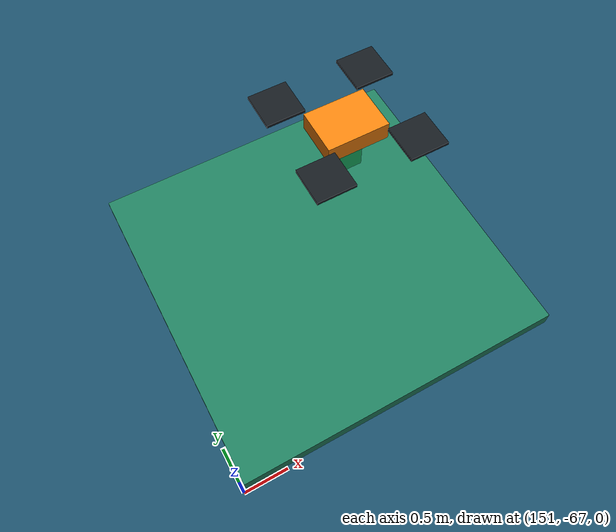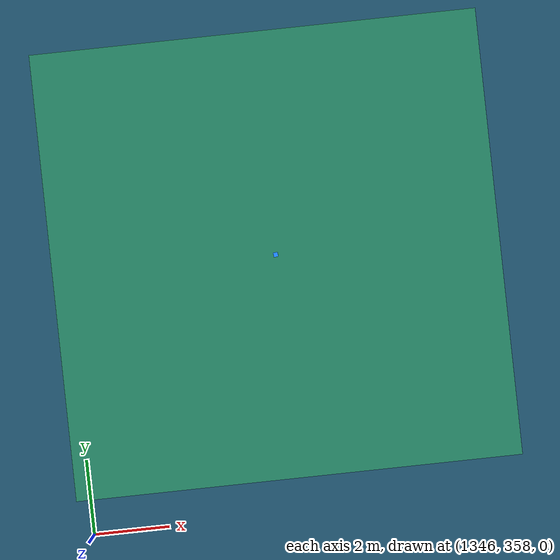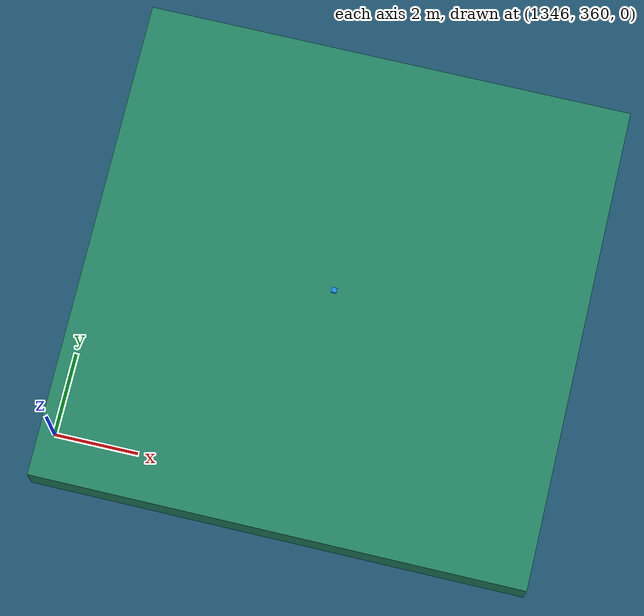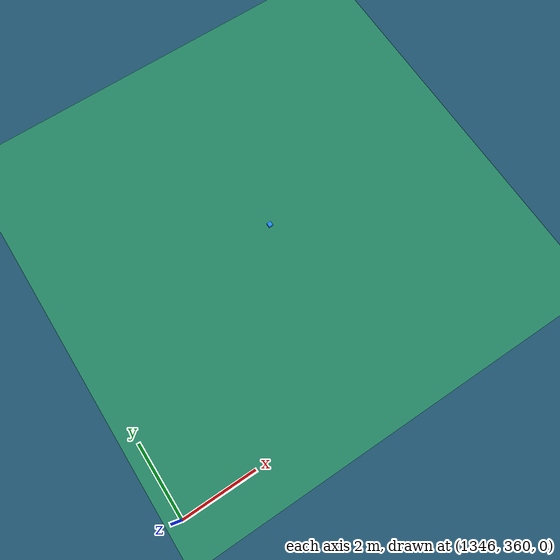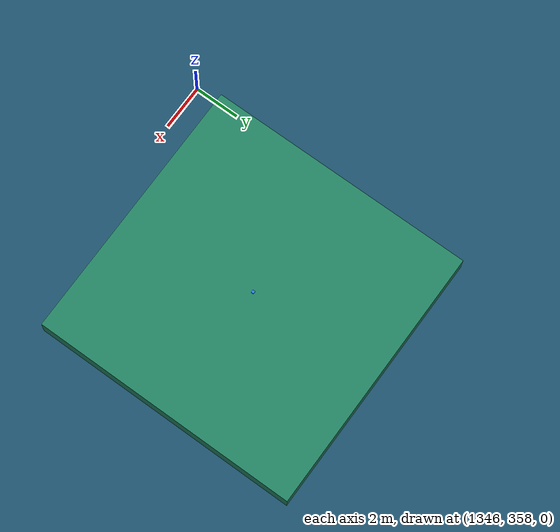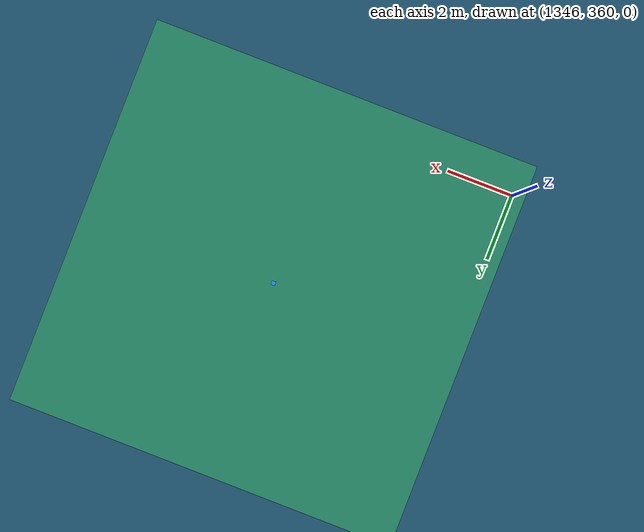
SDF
<sdf version="1.9">
 <world name="default">
  <physics type="ode">
   <max_step_size>0.004</max_step_size>
   <real_time_factor>1.0</real_time_factor>
   <real_time_update_rate>250</real_time_update_rate>
  </physics>
  <gravity>0 0 -9.8</gravity>
  <magnetic_field>6e-06 2.3e-05 -4.2e-05</magnetic_field>
  <atmosphere type="adiabatic"/>
  <scene>
   <grid>false</grid>
   <ambient>0.4 0.4 0.4 1</ambient>
   <background>0.7 0.7 0.7 1</background>
   <shadows>true</shadows>
  </scene>
  <light name="sunUTC" type="directional">
   <pose>0 0 500 0 -0 0</pose>
   <intensity>1</intensity>
   <direction>0.001 0.625 -0.78</direction>
   <diffuse>0.904 0.904 0.904 1</diffuse>
   <specular>0.271 0.271 0.271 1</specular>
   <attenuation><range>2000</range><linear>0</linear><constant>1</constant><quadratic>0</quadratic></attenuation>
   <spot><inner_angle>0</inner_angle><outer_angle>0</outer_angle><falloff>0</falloff></spot>
  </light>
  <spherical_coordinates>
   <surface_model>EARTH_WGS84</surface_model>
   <world_frame_orientation>ENU</world_frame_orientation>
   <latitude_deg>35.44765024667082</latitude_deg>
   <longitude_deg>139.64480691720166</longitude_deg>
   <elevation>0</elevation>
  </spherical_coordinates>
  <plugin filename="gz-sim-physics-system" name="gz::sim::systems::Physics"/>
  <plugin filename="gz-sim-user-commands-system" name="gz::sim::systems::UserCommands"/>
  <plugin filename="gz-sim-scene-broadcaster-system" name="gz::sim::systems::SceneBroadcaster"/>
  <plugin filename="gz-sim-contact-system" name="gz::sim::systems::Contact"/>
  <plugin filename="gz-sim-imu-system" name="gz::sim::systems::Imu"/>
  <plugin filename="gz-sim-magnetometer-system" name="gz::sim::systems::Magnetometer"/>
  <plugin filename="gz-sim-air-pressure-system" name="gz::sim::systems::AirPressure"/>
  <plugin filename="gz-sim-navsat-system" name="gz::sim::systems::NavSat"/>
  <plugin filename="gz-sim-sensors-system" name="gz::sim::systems::Sensors">
   <render_engine>ogre2</render_engine>
  </plugin>
  <model name="launch_pad">
   <static>true</static>
   <pose>1351.6022270886856 364.9265949871361 -0.5 0 0 0</pose>
   <link name="link">
    <visual name="visual">
     <geometry><box><size>12 12 1</size></box></geometry>
     <material><diffuse>.12 .48 .36 1</diffuse></material>
    </visual>
    <collision name="collision"><geometry><box><size>12 12 1</size></box></geometry></collision>
    <sensor name="launch_pad" type="contact">
     <always_on>true</always_on>
     <update_rate>20</update_rate>
     <topic>/yokohama/contacts/launch_pad</topic>
     <contact><collision>collision</collision></contact>
    </sensor>
   </link>
  </model>
  <model name="delivery_pad">
   <static>true</static>
   <pose>153.03285452510517 -64.89336826549612 -0.2688569128957251 0 0 0</pose>
   <link name="link">
    <visual name="visual">
     <geometry><box><size>4 4 .2</size></box></geometry>
     <material><diffuse>.12 .48 .36 1</diffuse></material>
    </visual>
    <collision name="collision"><geometry><box><size>4 4 .2</size></box></geometry></collision>
    <sensor name="delivery_pad" type="contact">
     <always_on>true</always_on>
     <update_rate>20</update_rate>
     <topic>/yokohama/contacts/delivery_pad</topic>
     <contact><collision>collision</collision></contact>
    </sensor>
   </link>
  </model>
  <model name="scene_camera">
   <static>true</static>
   <link name="link">
    <sensor name="rgbd" type="rgbd_camera">
     <pose>-34.88761388811289 -60.6945307036456 15.110143087104275 0 0 -0.5216910496069086</pose>
     <always_on>true</always_on>
     <update_rate>2</update_rate>
     <topic>/yokohama/scene</topic>
     <camera>
      <horizontal_fov>1.0471975511965976</horizontal_fov>
      <image><width>640</width><height>360</height><format>R8G8B8</format></image>
      <clip><near>.1</near><far>800</far></clip>
      <depth_camera><clip><near>.1</near><far>800</far></clip></depth_camera>
     </camera>
    </sensor>
   </link>
  </model>
  <model name="authored_sea">
   <static>true</static>
   <pose>1351.6022270886856 364.9265949871361 -3 0 0 0</pose>
   <link name="link">
    <visual name="water_visual_only">
     <geometry><box><size>3500 3500 .02</size></box></geometry>
     <material><diffuse>.10 .30 .40 1</diffuse></material>
    </visual>
   </link>
  </model>
  <model name="delivery_payload">
   <pose>1351.6022270886856 364.9265949871361 0.04 0 0 0</pose>
   <static>false</static>
   <link name="payload_link">
    <inertial>
     <mass>0.050000</mass>
     <inertia><ixx>0.0001</ixx><ixy>0</ixy><ixz>0</ixz><iyy>0.0001</iyy><iyz>0</iyz><izz>0.0001</izz></inertia>
    </inertial>
    <collision name="payload_collision"><geometry><box><size>0.12 0.12 0.08</size></box></geometry></collision>
    <visual name="payload_visual">
     <geometry><box><size>0.12 0.12 0.08</size></box></geometry>
     <material><diffuse>0.1 0.5 1.0 1</diffuse></material>
    </visual>
   </link>
  </model>
  <model name="delivery_camera">
   <static>true</static>
   <link name="link">
    <sensor name="delivery_rgb" type="camera">
     <pose>158.03285452510517 -69.89336826549612 2.831143087104275 0 0.40124714191836086 2.356194490192345</pose>
     <always_on>true</always_on>
     <update_rate>4</update_rate>
     <topic>/yokohama/delivery</topic>
     <camera>
      <horizontal_fov>1.0471975511965976</horizontal_fov>
      <image><width>640</width><height>360</height><format>R8G8B8</format></image>
      <clip><near>.1</near><far>800</far></clip>
     </camera>
    </sensor>
   </link>
  </model>
  <model name="queue_lead">
   <static>true</static>
   <pose>153.83285452510518 -64.09336826549612 1.0311430871042748 0 0 0</pose>
   <link name="link">
    <visual name="body">
     <geometry><box><size>.8 .6 .25</size></box></geometry>
     <material><diffuse>.95 .5 .05 1</diffuse><ambient>.95 .5 .05 1</ambient></material>
    </visual>
    <collision name="body"><geometry><box><size>.8 .6 .25</size></box></geometry></collision>
    <visual name="rotor_0">
     <pose>-0.6 -0.6 0.1 0 0 0</pose>
     <geometry><box><size>.5 .5 .04</size></box></geometry>
     <material><diffuse>.08 .1 .12 1</diffuse><ambient>.08 .1 .12 1</ambient></material>
    </visual>
    <collision name="rotor_0">
     <pose>-0.6 -0.6 0.1 0 0 0</pose>
     <geometry><box><size>.5 .5 .04</size></box></geometry>
    </collision>
    <visual name="rotor_1">
     <pose>-0.6 0.6 0.1 0 0 0</pose>
     <geometry><box><size>.5 .5 .04</size></box></geometry>
     <material><diffuse>.08 .1 .12 1</diffuse><ambient>.08 .1 .12 1</ambient></material>
    </visual>
    <collision name="rotor_1">
     <pose>-0.6 0.6 0.1 0 0 0</pose>
     <geometry><box><size>.5 .5 .04</size></box></geometry>
    </collision>
    <visual name="rotor_2">
     <pose>0.6 -0.6 0.1 0 0 0</pose>
     <geometry><box><size>.5 .5 .04</size></box></geometry>
     <material><diffuse>.08 .1 .12 1</diffuse><ambient>.08 .1 .12 1</ambient></material>
    </visual>
    <collision name="rotor_2">
     <pose>0.6 -0.6 0.1 0 0 0</pose>
     <geometry><box><size>.5 .5 .04</size></box></geometry>
    </collision>
    <visual name="rotor_3">
     <pose>0.6 0.6 0.1 0 0 0</pose>
     <geometry><box><size>.5 .5 .04</size></box></geometry>
     <material><diffuse>.08 .1 .12 1</diffuse><ambient>.08 .1 .12 1</ambient></material>
    </visual>
    <collision name="rotor_3">
     <pose>0.6 0.6 0.1 0 0 0</pose>
     <geometry><box><size>.5 .5 .04</size></box></geometry>
    </collision>
   </link>
  </model>
  <model name="queue_parcel">
   <static>true</static>
   <pose>153.83285452510518 -64.09336826549612 0.5311430871042748 0 0 0</pose>
   <link name="link">
    <visual name="cargo">
     <geometry><box><size>.3 .3 .3</size></box></geometry>
     <material><diffuse>.1 .7 .4 1</diffuse><ambient>.1 .7 .4 1</ambient></material>
    </visual>
    <collision name="cargo"><geometry><box><size>.3 .3 .3</size></box></geometry></collision>
   </link>
  </model>
  <model name="queue_camera">
   <static>true</static>
   <link name="link">
    <sensor name="queue_rgb" type="camera">
     <pose>169.03285452510517 -80.89336826549612 11.831143087104275 0 0.4161325009697857 2.356194490192345</pose>
     <always_on>true</always_on>
     <update_rate>4</update_rate>
     <topic>/yokohama/queue</topic>
     <camera>
      <horizontal_fov>1.0471975511965976</horizontal_fov>
      <image><width>640</width><height>360</height><format>R8G8B8</format></image>
      <clip><near>.1</near><far>800</far></clip>
     </camera>
    </sensor>
   </link>
  </model>
  <model name="x500_0">
   <static>true</static>
   <pose>143.06599428639694 -82.2329673664574 9.831143087104275 0 0.2914567944778671 1.0491098217515702</pose>
   <link name="base_link">
    <sensor name="urban_rgbd" type="rgbd_camera">
     <pose>0.25 0 0.1 0 0 0</pose>
     <always_on>true</always_on>
     <update_rate>4</update_rate>
     <topic>/yokohama/onboard</topic>
     <camera>
      <horizontal_fov>1.0471975511965976</horizontal_fov>
      <image><width>640</width><height>360</height><format>R8G8B8</format></image>
      <clip><near>.1</near><far>800</far></clip>
      <depth_camera><clip><near>.1</near><far>800</far></clip></depth_camera>
     </camera>
    </sensor>
    <sensor name="urban_down" type="camera">
     <pose>0.25 0 0.1 0 1.5707963267948966 0</pose>
     <always_on>true</always_on>
     <update_rate>4</update_rate>
     <topic>/yokohama/down</topic>
     <camera>
      <horizontal_fov>1.0471975511965976</horizontal_fov>
      <image><width>640</width><height>360</height><format>R8G8B8</format></image>
      <clip><near>.1</near><far>800</far></clip>
     </camera>
    </sensor>
   </link>
   <plugin filename="gz-sim-pose-publisher-system" name="gz::sim::systems::PosePublisher">
    <publish_model_pose>true</publish_model_pose>
    <publish_link_pose>false</publish_link_pose>
    <use_pose_vector_msg>true</use_pose_vector_msg>
    <update_frequency>250</update_frequency>
    <topic>/world/default/pose/info</topic>
   </plugin>
  </model>
 </world>
</sdf>
